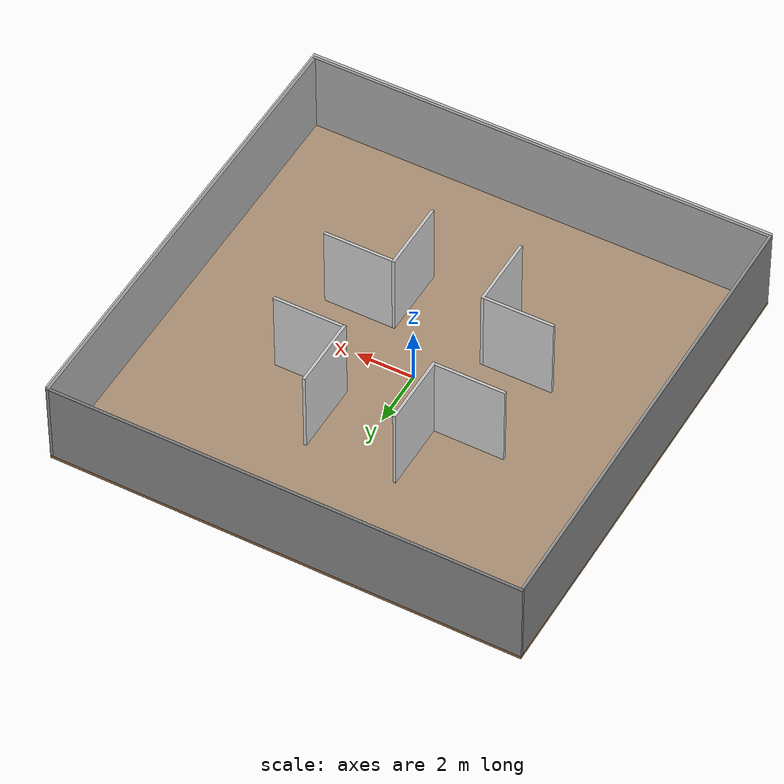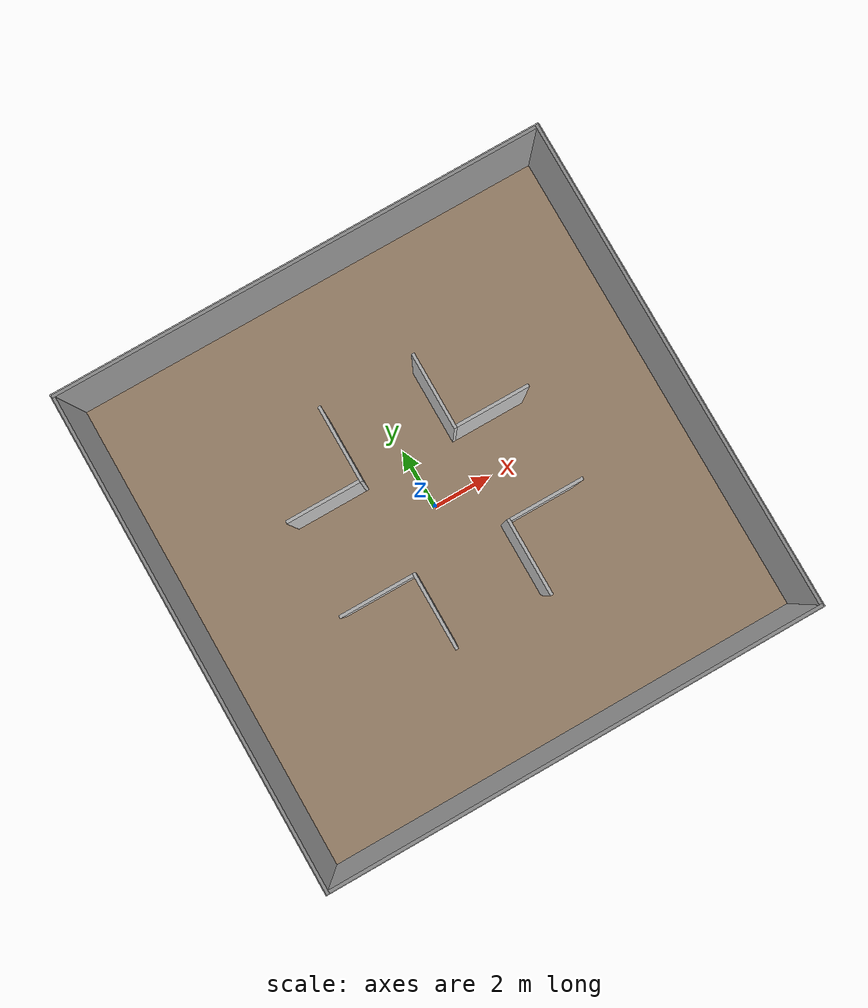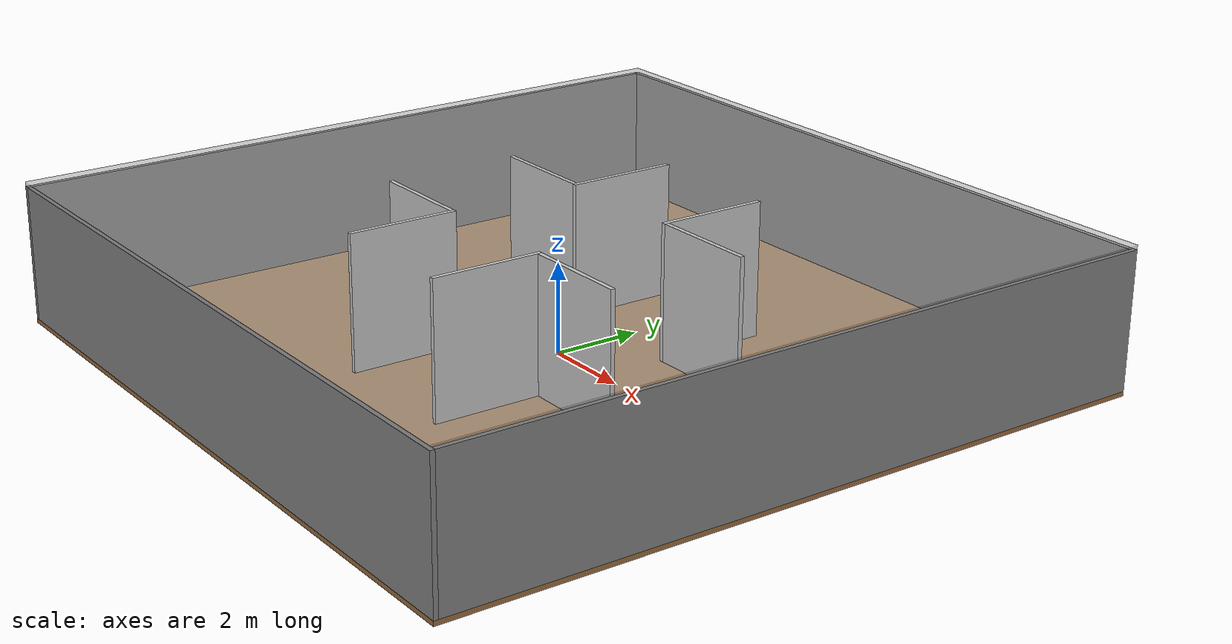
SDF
<?xml version="1.0" ?>
<sdf version="1.5">
  <world name="default">

    <include>
      <uri>model://sun</uri>
    </include>

    <physics name="default_physics" default="0" type="ode">
      <gravity>0 0 -9.8066</gravity>
      <ode>
        <solver>
          <type>quick</type>
          <iters>10</iters>
          <sor>1.3</sor>
          <use_dynamic_moi_rescaling>0</use_dynamic_moi_rescaling>
        </solver>
        <constraints>
          <cfm>0</cfm>
          <erp>0.2</erp>
          <contact_max_correcting_vel>100</contact_max_correcting_vel>
          <contact_surface_layer>0.001</contact_surface_layer>
        </constraints>
      </ode>
      <max_step_size>0.004</max_step_size>
      <real_time_factor>1</real_time_factor>
      <real_time_update_rate>250</real_time_update_rate>
      <magnetic_field>6.0e-6 2.3e-5 -4.2e-5</magnetic_field>
    </physics>

    <model name="box_1">
      <pose>0.04999999999999982 -8.05 1.5  0 0 0</pose>
      <static>true</static>
      <link name="link">
        <collision name="collision">
          <geometry>
            <box>
              <size>16.1 0.09999999999999964 3.0 </size>
            </box>
          </geometry>
        </collision>
        <visual name="visual">
          <geometry>
            <box>
              <size>16.1 0.09999999999999964 3.0 </size>
            </box>
          </geometry>
          <material>
            <script>
              <name>Gazebo/Grey</name>
              <uri>file://media/materials/scripts/gazebo.material</uri>
            </script>
          </material>
        </visual>
      </link>
    </model>

    <model name="box_2">
      <pose>8.05 0.04999999999999982 1.5  0 0 0</pose>
      <static>true</static>
      <link name="link">
        <collision name="collision">
          <geometry>
            <box>
              <size>0.09999999999999964 16.1 3.0 </size>
            </box>
          </geometry>
        </collision>
        <visual name="visual">
          <geometry>
            <box>
              <size>0.09999999999999964 16.1 3.0 </size>
            </box>
          </geometry>
          <material>
            <script>
              <name>Gazebo/Grey</name>
              <uri>file://media/materials/scripts/gazebo.material</uri>
            </script>
          </material>
        </visual>
      </link>
    </model>

    <model name="box_3">
      <pose>-0.04999999999999982 8.05 1.5  0 0 0</pose>
      <static>true</static>
      <link name="link">
        <collision name="collision">
          <geometry>
            <box>
              <size>16.1 0.09999999999999964 3.0 </size>
            </box>
          </geometry>
        </collision>
        <visual name="visual">
          <geometry>
            <box>
              <size>16.1 0.09999999999999964 3.0 </size>
            </box>
          </geometry>
          <material>
            <script>
              <name>Gazebo/Grey</name>
              <uri>file://media/materials/scripts/gazebo.material</uri>
            </script>
          </material>
        </visual>
      </link>
    </model>

    <model name="box_4">
      <pose>-8.05 -0.04999999999999982 1.5  0 0 0</pose>
      <static>true</static>
      <link name="link">
        <collision name="collision">
          <geometry>
            <box>
              <size>0.09999999999999964 16.1 3.0 </size>
            </box>
          </geometry>
        </collision>
        <visual name="visual">
          <geometry>
            <box>
              <size>0.09999999999999964 16.1 3.0 </size>
            </box>
          </geometry>
          <material>
            <script>
              <name>Gazebo/Grey</name>
              <uri>file://media/materials/scripts/gazebo.material</uri>
            </script>
          </material>
        </visual>
      </link>
    </model>

    <model name="box_5">
      <pose>0.0 0.0 -0.05  0 0 0</pose>
      <static>true</static>
      <link name="link">
        <collision name="collision">
          <geometry>
            <box>
              <size>16.2 16.2 0.1 </size>
            </box>
          </geometry>
        </collision>
        <visual name="visual">
          <geometry>
            <box>
              <size>16.2 16.2 0.1 </size>
            </box>
          </geometry>
          <material>
            <script>
              <name>Gazebo/WoodFloor</name>
              <uri>file://media/materials/scripts/gazebo.material</uri>
            </script>
          </material>
        </visual>
      </link>
    </model>

    <model name="box_6">
      <pose>0.0 0.0 3.05  0 0 0</pose>
      <static>true</static>
      <link name="link">
        <collision name="collision">
          <geometry>
            <box>
              <size>16.2 16.2 0.10000000000000009 </size>
            </box>
          </geometry>
        </collision>
        <visual name="visual">
          <geometry>
            <box>
              <size>16.2 16.2 0.10000000000000009 </size>
            </box>
          </geometry>
          <material>
            <script>
              <name>Gazebo/GreyTransparent</name>
              <uri>file://media/materials/scripts/gazebo.material</uri>
            </script>
          </material>
        </visual>
      </link>
    </model>

    <model name="box_7">
      <pose>-2.8 -1.55 1.5  0 0 0</pose>
      <static>true</static>
      <link name="link">
        <collision name="collision">
          <geometry>
            <box>
              <size>2.4 0.10000000000000009 3.0 </size>
            </box>
          </geometry>
        </collision>
        <visual name="visual">
          <geometry>
            <box>
              <size>2.4 0.10000000000000009 3.0 </size>
            </box>
          </geometry>
          <material>
            <script>
              <name>Gazebo/White</name>
              <uri>file://media/materials/scripts/gazebo.material</uri>
            </script>
          </material>
        </visual>
      </link>
    </model>

    <model name="box_8">
      <pose>-1.55 -2.75 1.5  0 0 0</pose>
      <static>true</static>
      <link name="link">
        <collision name="collision">
          <geometry>
            <box>
              <size>0.10000000000000009 2.5 3.0 </size>
            </box>
          </geometry>
        </collision>
        <visual name="visual">
          <geometry>
            <box>
              <size>0.10000000000000009 2.5 3.0 </size>
            </box>
          </geometry>
          <material>
            <script>
              <name>Gazebo/White</name>
              <uri>file://media/materials/scripts/gazebo.material</uri>
            </script>
          </material>
        </visual>
      </link>
    </model>

    <model name="box_9">
      <pose>-2.8 1.55 1.5  0 0 0</pose>
      <static>true</static>
      <link name="link">
        <collision name="collision">
          <geometry>
            <box>
              <size>2.4 0.10000000000000009 3.0 </size>
            </box>
          </geometry>
        </collision>
        <visual name="visual">
          <geometry>
            <box>
              <size>2.4 0.10000000000000009 3.0 </size>
            </box>
          </geometry>
          <material>
            <script>
              <name>Gazebo/White</name>
              <uri>file://media/materials/scripts/gazebo.material</uri>
            </script>
          </material>
        </visual>
      </link>
    </model>

    <model name="box_10">
      <pose>-1.55 2.75 1.5  0 0 0</pose>
      <static>true</static>
      <link name="link">
        <collision name="collision">
          <geometry>
            <box>
              <size>0.10000000000000009 2.5 3.0 </size>
            </box>
          </geometry>
        </collision>
        <visual name="visual">
          <geometry>
            <box>
              <size>0.10000000000000009 2.5 3.0 </size>
            </box>
          </geometry>
          <material>
            <script>
              <name>Gazebo/White</name>
              <uri>file://media/materials/scripts/gazebo.material</uri>
            </script>
          </material>
        </visual>
      </link>
    </model>

    <model name="box_11">
      <pose>2.8 -1.55 1.5  0 0 0</pose>
      <static>true</static>
      <link name="link">
        <collision name="collision">
          <geometry>
            <box>
              <size>2.4 0.10000000000000009 3.0 </size>
            </box>
          </geometry>
        </collision>
        <visual name="visual">
          <geometry>
            <box>
              <size>2.4 0.10000000000000009 3.0 </size>
            </box>
          </geometry>
          <material>
            <script>
              <name>Gazebo/White</name>
              <uri>file://media/materials/scripts/gazebo.material</uri>
            </script>
          </material>
        </visual>
      </link>
    </model>

    <model name="box_12">
      <pose>1.55 -2.75 1.5  0 0 0</pose>
      <static>true</static>
      <link name="link">
        <collision name="collision">
          <geometry>
            <box>
              <size>0.10000000000000009 2.5 3.0 </size>
            </box>
          </geometry>
        </collision>
        <visual name="visual">
          <geometry>
            <box>
              <size>0.10000000000000009 2.5 3.0 </size>
            </box>
          </geometry>
          <material>
            <script>
              <name>Gazebo/White</name>
              <uri>file://media/materials/scripts/gazebo.material</uri>
            </script>
          </material>
        </visual>
      </link>
    </model>

    <model name="box_13">
      <pose>2.8 1.55 1.5  0 0 0</pose>
      <static>true</static>
      <link name="link">
        <collision name="collision">
          <geometry>
            <box>
              <size>2.4 0.10000000000000009 3.0 </size>
            </box>
          </geometry>
        </collision>
        <visual name="visual">
          <geometry>
            <box>
              <size>2.4 0.10000000000000009 3.0 </size>
            </box>
          </geometry>
          <material>
            <script>
              <name>Gazebo/White</name>
              <uri>file://media/materials/scripts/gazebo.material</uri>
            </script>
          </material>
        </visual>
      </link>
    </model>

    <model name="box_14">
      <pose>1.55 2.75 1.5  0 0 0</pose>
      <static>true</static>
      <link name="link">
        <collision name="collision">
          <geometry>
            <box>
              <size>0.10000000000000009 2.5 3.0 </size>
            </box>
          </geometry>
        </collision>
        <visual name="visual">
          <geometry>
            <box>
              <size>0.10000000000000009 2.5 3.0 </size>
            </box>
          </geometry>
          <material>
            <script>
              <name>Gazebo/White</name>
              <uri>file://media/materials/scripts/gazebo.material</uri>
            </script>
          </material>
        </visual>
      </link>
    </model>

    <gui fullscreen='0'>
      <camera name='user_camera'>
        <pose frame=''>-20.1959 0.244537 21.9635 -0 0.803642 -0.00781</pose>
        <view_controller>orbit</view_controller>
        <projection_type>perspective</projection_type>
      </camera>
    </gui>
  </world>
</sdf>
